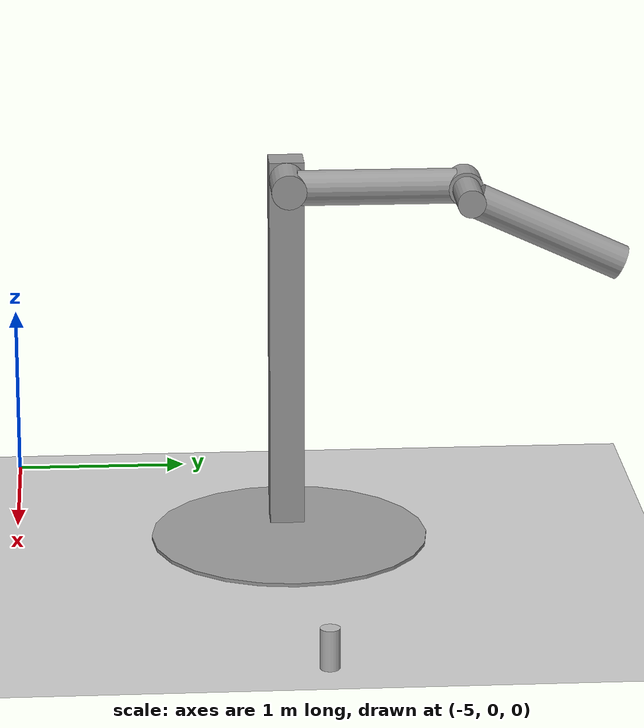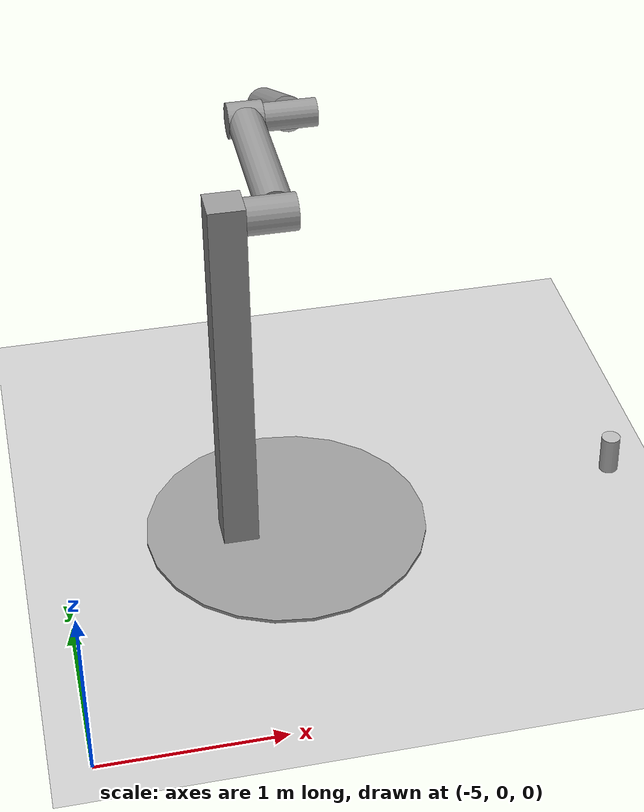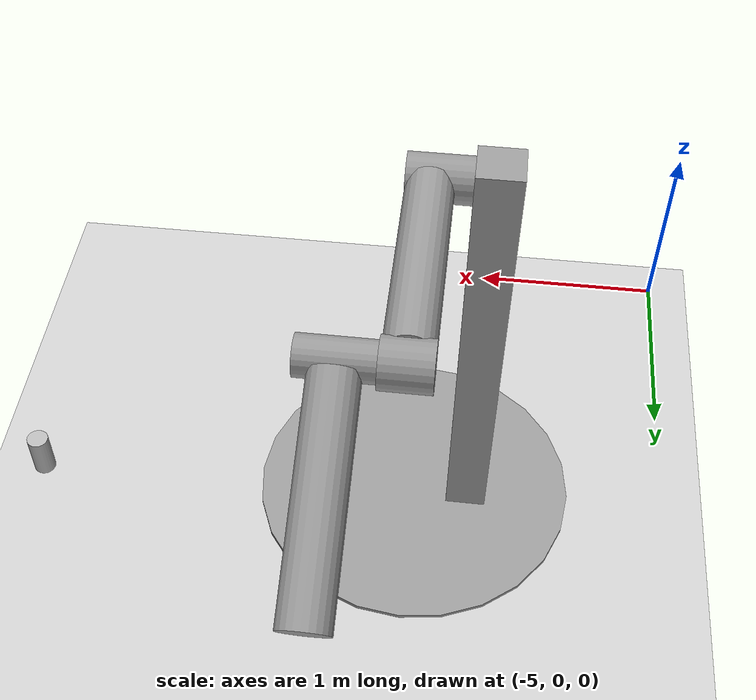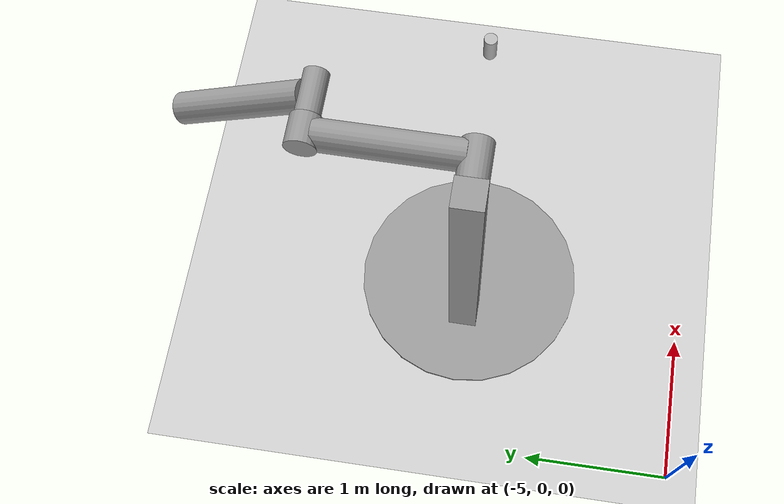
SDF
<sdf version="1.6">
 <world name="default">
  <light name="sun" type="directional">
   <pose>0 0 10 0 -0 0</pose>
   <diffuse>0.8 0.8 0.8 1</diffuse>
   <specular>0.1 0.1 0.1 1</specular>
   <attenuation>
    <range>1000</range>
    <constant>0.9</constant>
    <linear>0.01</linear>
    <quadratic>0.001</quadratic>
   </attenuation>
   <direction>-0.5 0.5 -1</direction>
  </light>
  <model name="ground_plane">
   <static>1</static>
   <link name="link">
    <collision name="collision">
     <geometry><plane><normal>0 0 1</normal><size>100 100</size></plane></geometry>
     <surface><friction><ode><mu>100</mu><mu2>50</mu2></ode></friction></surface>
    </collision>
    <visual name="visual">
     <cast_shadows>0</cast_shadows>
     <geometry><plane><normal>0 0 1</normal><size>100 100</size></plane></geometry>
     <material>
      <script><uri>file://media/materials/scripts/gazebo.material</uri><name>Gazebo/Grey</name></script>
     </material>
    </visual>
   </link>
  </model>
  <gravity>0 0 -9.8</gravity>
  <magnetic_field>6e-06 2.3e-05 -4.2e-05</magnetic_field>
  <atmosphere type="adiabatic"/>
  <physics name="default_physics" default="0" type="ode">
   <max_step_size>0.001</max_step_size>
   <real_time_factor>1</real_time_factor>
   <real_time_update_rate>1000</real_time_update_rate>
  </physics>
  <scene><ambient>0.4 0.4 0.4 1</ambient><background>0.7 0.7 0.7 1</background><shadows>1</shadows></scene>
  <spherical_coordinates>
   <surface_model>EARTH_WGS84</surface_model>
   <latitude_deg>0</latitude_deg>
   <longitude_deg>0</longitude_deg>
   <elevation>0</elevation>
   <heading_deg>0</heading_deg>
  </spherical_coordinates>
  <model name="beer">
   <link name="link">
    <pose>0 0 0.115 0 -0 0</pose>
    <inertial>
     <mass>0.39</mass>
     <inertia><ixx>0.00058</ixx><ixy>0</ixy><ixz>0</ixz><iyy>0.00058</iyy><iyz>0</iyz><izz>0.00019</izz></inertia>
    </inertial>
    <collision name="collision">
     <geometry><cylinder><radius>0.055</radius><length>0.23</length></cylinder></geometry>
    </collision>
    <visual name="visual">
     <geometry><cylinder><radius>0.055</radius><length>0.23</length></cylinder></geometry>
     <material>
      <script>
       <uri>model://beer/materials/scripts</uri>
       <uri>model://beer/materials/textures</uri>
       <name>Beer/Diffuse</name>
      </script>
     </material>
    </visual>
   </link>
   <pose>-1.74864 1.67863 -2e-06 1e-06 -0 -5e-06</pose>
  </model>
  <model name="double_pendulum_with_base">
   <link name="base">
    <inertial>
     <mass>100</mass>
     <inertia><ixx>1</ixx><ixy>0</ixy><ixz>0</ixz><iyy>1</iyy><iyz>0</iyz><izz>1</izz></inertia>
    </inertial>
    <visual name="vis_plate_on_ground">
     <pose>0 0 0.01 0 -0 0</pose>
     <geometry><cylinder><radius>0.8</radius><length>0.02</length></cylinder></geometry>
     <material>
      <script><uri>file://media/materials/scripts/gazebo.material</uri><name>Gazebo/Grey</name></script>
     </material>
    </visual>
    <visual name="vis_pole">
     <pose>-0.275 0 1.1 0 -0 0</pose>
     <geometry><box><size>0.2 0.2 2.2</size></box></geometry>
     <material>
      <script><uri>file://media/materials/scripts/gazebo.material</uri><name>Gazebo/Grey</name></script>
     </material>
    </visual>
    <collision name="col_plate_on_ground">
     <pose>0 0 0.01 0 -0 0</pose>
     <geometry><cylinder><radius>0.8</radius><length>0.02</length></cylinder></geometry>
    </collision>
    <collision name="col_pole">
     <pose>-0.275 0 1.1 0 -0 0</pose>
     <geometry><box><size>0.2 0.2 2.2</size></box></geometry>
    </collision>
   </link>
   <link name="upper_link">
    <pose>0 0 2.1 -1.5708 0 0</pose>
    <inertial>
     <pose>0 0 0.5 0 -0 0</pose>
     <inertia><ixx>1</ixx><ixy>0</ixy><ixz>0</ixz><iyy>1</iyy><iyz>0</iyz><izz>1</izz></inertia>
     <mass>1</mass>
    </inertial>
    <visual name="vis_upper_joint">
     <pose>-0.05 0 0 3.14159 1.57079 3.14159</pose>
     <geometry><cylinder><radius>0.1</radius><length>0.3</length></cylinder></geometry>
     <material>
      <script><uri>file://media/materials/scripts/gazebo.material</uri><name>Gazebo/Grey</name></script>
     </material>
    </visual>
    <visual name="vis_lower_joint">
     <pose>0 0 1 3.14159 1.57079 3.14159</pose>
     <geometry><cylinder><radius>0.1</radius><length>0.2</length></cylinder></geometry>
     <material>
      <script><uri>file://media/materials/scripts/gazebo.material</uri><name>Gazebo/Grey</name></script>
     </material>
    </visual>
    <visual name="vis_cylinder">
     <pose>0 0 0.5 0 -0 0</pose>
     <geometry><cylinder><radius>0.1</radius><length>0.9</length></cylinder></geometry>
     <material>
      <script><uri>file://media/materials/scripts/gazebo.material</uri><name>Gazebo/Grey</name></script>
     </material>
    </visual>
    <collision name="col_upper_joint">
     <pose>-0.05 0 0 3.14159 1.57079 3.14159</pose>
     <geometry><cylinder><radius>0.1</radius><length>0.3</length></cylinder></geometry>
    </collision>
    <collision name="col_lower_joint">
     <pose>0 0 1 3.14159 1.57079 3.14159</pose>
     <geometry><cylinder><radius>0.1</radius><length>0.2</length></cylinder></geometry>
    </collision>
    <collision name="col_cylinder">
     <pose>0 0 0.5 0 -0 0</pose>
     <geometry><cylinder><radius>0.1</radius><length>0.9</length></cylinder></geometry>
    </collision>
   </link>
   <link name="lower_link">
    <pose>0.25 1 2.1 -2 0 0</pose>
    <inertial>
     <pose>0 0 0.5 0 -0 0</pose>
     <inertia><ixx>1</ixx><ixy>0</ixy><ixz>0</ixz><iyy>1</iyy><iyz>0</iyz><izz>1</izz></inertia>
     <mass>1</mass>
    </inertial>
    <visual name="vis_lower_joint">
     <pose>0 0 0 3.14159 1.57079 3.14159</pose>
     <geometry><cylinder><radius>0.08</radius><length>0.3</length></cylinder></geometry>
     <material>
      <script><uri>file://media/materials/scripts/gazebo.material</uri><name>Gazebo/Grey</name></script>
     </material>
    </visual>
    <visual name="vis_cylinder">
     <pose>0 0 0.5 0 -0 0</pose>
     <geometry><cylinder><radius>0.1</radius><length>0.9</length></cylinder></geometry>
     <material>
      <script><uri>file://media/materials/scripts/gazebo.material</uri><name>Gazebo/Grey</name></script>
     </material>
    </visual>
    <collision name="col_lower_joint">
     <pose>0 0 0 3.14159 1.57079 3.14159</pose>
     <geometry><cylinder><radius>0.08</radius><length>0.3</length></cylinder></geometry>
    </collision>
    <collision name="col_cylinder">
     <pose>0 0 0.5 0 -0 0</pose>
     <geometry><cylinder><radius>0.1</radius><length>0.9</length></cylinder></geometry>
    </collision>
   </link>
   <joint name="upper_joint" type="revolute">
    <parent>base</parent>
    <child>upper_link</child>
    <axis>
     <xyz>1 0 0</xyz>
     <use_parent_model_frame>1</use_parent_model_frame>
     <limit><lower>-1e+16</lower><upper>1e+16</upper></limit>
     <dynamics><spring_reference>0</spring_reference><spring_stiffness>0</spring_stiffness></dynamics>
    </axis>
   </joint>
   <joint name="lower_joint" type="revolute">
    <parent>upper_link</parent>
    <child>lower_link</child>
    <axis>
     <xyz>1 0 0</xyz>
     <use_parent_model_frame>1</use_parent_model_frame>
     <limit><lower>-1e+16</lower><upper>1e+16</upper></limit>
     <dynamics><spring_reference>0</spring_reference><spring_stiffness>0</spring_stiffness></dynamics>
    </axis>
   </joint>
   <pose>-3.71669 1.57773 0 0 0 -0.004872</pose>
  </model>
 </world>
</sdf>
